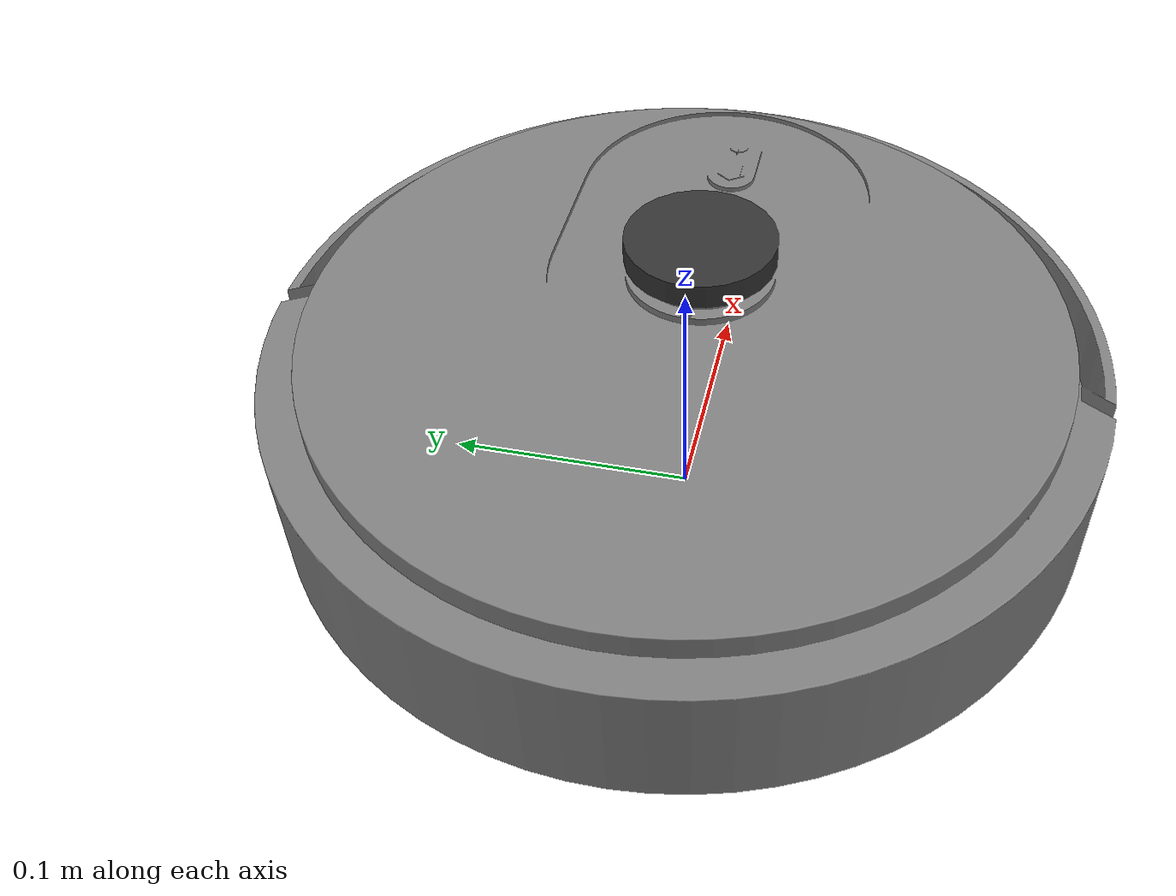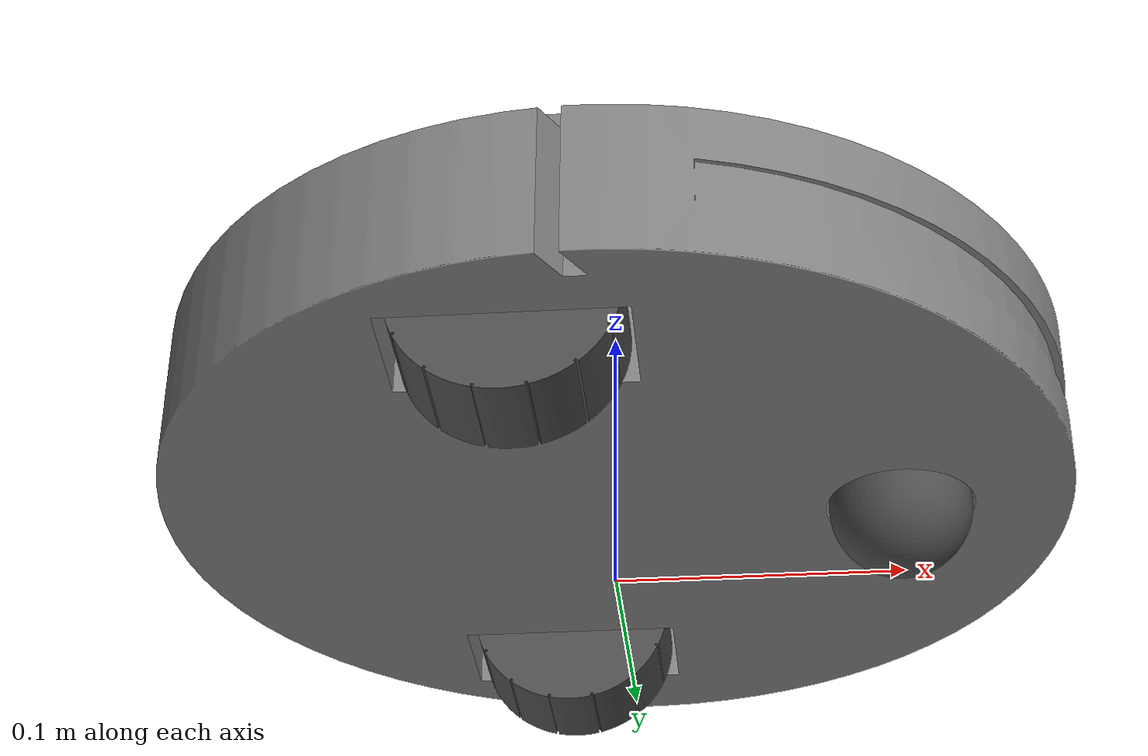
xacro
<?xml version="1.0" ?>
<!-- Generated using onshape-to-robot -->
<!-- Onshape document_id: 6ec665232e6fc828980877e8 -->
<robot name="robot_vacuum" xmlns:xacro="http://www.ros.org/wiki/xacro">

    <xacro:include filename="xacro_properties/xacro_properties.xacro" />
    <xacro:include filename="models/base_and_wheels.xacro" />
    <xacro:include filename="models/camera.xacro" />
    <xacro:include filename="models/lidar.xacro" />
    <xacro:include filename="gazebo/gazebo_plugins.xacro" />
    <xacro:include filename="gazebo/gazebo_properties.xacro" />

</robot>

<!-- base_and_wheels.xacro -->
<!-- Generated using onshape-to-robot -->
<!-- Onshape document_id: 6ec665232e6fc828980877e8 -->
<robot name="robot_vacuum" xmlns:xacro="http://www.ros.org/wiki/xacro">

  <link name="base_footprint_link"/>

  <joint name="base_joint" type="fixed">
    <parent link="base_footprint_link" />
    <child link="base_link" />
    <origin xyz="0 0 0.025" rpy="0 0 0" />
  </joint>

  <!-- Link base_link -->
  <link name="base_link">
    <inertial>
      <origin xyz="-0.00378578 0 0.0270897" rpy="0 0 0"/>
      <mass value="4.00461"/>
      <inertia ixx="0.0244265" ixy="-0" ixz="0.000164923" iyy="0.0275036" iyz="-0" izz="0.0499105"/>
    </inertial>
    <!-- Part base_link -->
    <visual>
      <origin xyz="0 0 0" rpy="-0 -0 -1.5708"/>
      <geometry>
        <mesh filename="package://robot_description/assets/base_link.stl"/>
      </geometry>
      <material name="base_link_material">
        <color rgba="0.501961 0.501961 0.501961 1"/>
      </material>
    </visual>
    <collision>
      <origin xyz="0 0 0" rpy="-0 -0 -1.5708"/>
      <geometry>
        <mesh filename="package://robot_description/assets/base_link.stl"/>
      </geometry>
    </collision>
  </link>

  <!-- Link roof -->
  <link name="roof_link">
    <inertial>
      <origin xyz="-2e-12 -0.00178866 -0.00507735" rpy="0 0 0"/>
      <mass value="0.683273"/>
      <inertia ixx="0.00350653" ixy="0" ixz="-0" iyy="0.00362483" iyz="-1.91394e-06" izz="0.00711728"/>
    </inertial>
    <!-- Part roof -->
    <visual>
      <origin xyz="0 0 0" rpy="-3.14159 -0 0"/>
      <geometry>
        <mesh filename="package://robot_description/assets/roof.stl"/>
      </geometry>
      <material name="roof_material">
        <color rgba="0.501961 0.501961 0.501961 1"/>
      </material>
    </visual>
    <collision>
      <origin xyz="0 0 0" rpy="-3.14159 -0 0"/>
      <geometry>
        <mesh filename="package://robot_description/assets/roof.stl"/>
      </geometry>
    </collision>
  </link>

   <!-- Joint from base_link to roof -->
  <joint name="roof_joint" type="fixed">
    <origin xyz="-0 -0 0.0545" rpy="-3.14159 0 1.5708"/>
    <parent link="base_link"/>
    <child link="roof_link"/>
  </joint>

  <!-- Link wheel_right -->
  <link name="right_wheel_link">
    <inertial>
      <origin xyz="-0 -0 -0.0175" rpy="0 0 0"/>
      <mass value="0.161369"/>
      <inertia ixx="7.32673e-05" ixy="0" ixz="-0" iyy="7.32673e-05" iyz="-0" izz="0.000113589"/>
    </inertial>
    <!-- Part wheel_right -->
    <visual>
      <origin xyz="0 -0 0" rpy="1.5708 -0 0"/>
      <geometry>
        <mesh filename="package://robot_description/assets/wheel.stl"/>
      </geometry>
      <material name="wheel_material">
        <color rgba="0.301961 0.301961 0.301961 1"/>
      </material>
    </visual>
    <collision>
      <origin xyz="0 -0 0" rpy="1.5708 -0 0"/>
      <geometry>
        <mesh filename="package://robot_description/assets/wheel.stl"/>
      </geometry>
    </collision>
  </link>

  <!-- Joint from base_link to wheel_right -->
  <joint name="right_wheel_joint" type="continuous">
    <origin xyz="-0.025 -0.093 0.0115" rpy="-1.5708 0 -0"/>
    <parent link="base_link"/>
    <child link="right_wheel_link"/>
    <axis xyz="0 0 1"/>
    <limit effort="5.0" velocity="5.0"/>
    <dynamics damping="0.1" friction="0.1"/>
  </joint>

  <!-- Link wheel_left -->
  <link name="left_wheel_link">
    <inertial>
      <origin xyz="-0 -0 0.0175" rpy="0 0 0"/>
      <mass value="0.161369"/>
      <inertia ixx="7.32673e-05" ixy="-0" ixz="-0" iyy="7.32673e-05" iyz="0" izz="0.000113589"/>
    </inertial>
    <!-- Part wheel_left -->
    <visual>
      <origin xyz="0 0 0.035" rpy="1.5708 -0 -0"/>
      <geometry>
        <mesh filename="package://robot_description/assets/wheel.stl"/>
      </geometry>
      <material name="wheel_2_material">
        <color rgba="0.301961 0.301961 0.301961 1"/>
      </material>
    </visual>
    <collision>
      <origin xyz="0 0 0.035" rpy="1.5708 -0 -0"/>
      <geometry>
        <mesh filename="package://robot_description/assets/wheel.stl"/>
      </geometry>
    </collision>
  </link>

  <!-- Joint from base_link to wheel_left -->
  <joint name="left_wheel_joint" type="continuous">
    <origin xyz="-0.025 0.093 0.0115" rpy="-1.5708 0 -0"/>
    <parent link="base_link"/>
    <child link="left_wheel_link"/>
    <axis xyz="0 0 1"/>
    <limit effort="5.0" velocity="5.0"/>
    <dynamics damping="0.1" friction="0.1"/>
  </joint>

  <!-- Link caster_wheel -->
  <link name="caster_wheel_link">
    <inertial>
      <origin xyz="0 -0 -0" rpy="0 0 0"/>
      <mass value="0.0688532"/>
      <inertia ixx="1.72133e-05" ixy="-0" ixz="-0" iyy="1.72133e-05" iyz="-0" izz="1.72133e-05"/>
    </inertial>
    <!-- Part caster_wheel -->
    <visual>
      <origin xyz="0 -0 0" rpy="-0 -0 -0"/>
      <geometry>
        <mesh filename="package://robot_description/assets/caster_wheel.stl"/>
      </geometry>
      <material name="caster_wheel_material">
        <color rgba="0.301961 0.301961 0.301961 1"/>
      </material>
    </visual>
    <collision>
      <origin xyz="0 -0 0" rpy="-0 -0 -0"/>
      <geometry>
        <mesh filename="package://robot_description/assets/caster_wheel.stl"/>
      </geometry>
    </collision>
  </link>

  <!-- Joint from base_link to caster_wheel -->
  <joint name="caster_wheel_joint" type="fixed">
    <origin xyz="0.1 -0 -0" rpy="-0 0 -0"/>
    <parent link="base_link"/>
    <child link="caster_wheel_link"/>
  </joint>

</robot>

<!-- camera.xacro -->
<!-- Generated using onshape-to-robot -->
<!-- Onshape document_id: 6ec665232e6fc828980877e8 -->
<robot xmlns:xacro="http://www.ros.org/wiki/xacro">

    <!-- Link camera -->
  <link name="camera_link">
    <inertial>
      <origin xyz="-0 0 -0.00025" rpy="0 0 0"/>
      <mass value="2.63e-05"/>
      <inertia ixx="1e-09" ixy="0" ixz="0" iyy="1e-09" iyz="0" izz="1e-09"/>
    </inertial>
    <!-- Part camera -->
    <visual>
      <origin xyz="0 0 -0.0003" rpy="0 0 0"/>
      <geometry>
        <box size="0.00025 0.01 0.004" />
      </geometry>
      <material name="camera_link_material">
        <color rgba="0 0 0 1"/>
      </material>
    </visual>
    <collision>
      <origin xyz="0 0 -0.0005" rpy="0 0 0"/>
      <geometry>
        <box size="0.01 0.005 0.002" />
      </geometry>
    </collision>
  </link>

  <!-- Joint from base_link to camera -->
  <joint name="camera_joint" type="fixed">
    <origin xyz="0.159958 -0 0.0275" rpy="0 0 0"/>
    <parent link="base_link"/>
    <child link="camera_link"/>
    <axis xyz="0 0 1"/>
    <limit effort="100" velocity="100"/>
  </joint>

  <link name="camera_optical_link"></link>

  <joint name="camera_optical_joint" type="fixed">
    <origin xyz="0 0 0" rpy="-1.5708 0 -1.5708"/>
    <parent link="camera_link"/>
    <child link="camera_optical_link"/>
  </joint>

</robot>

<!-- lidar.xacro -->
<!-- Generated using onshape-to-robot -->
<!-- Onshape document_id: 6ec665232e6fc828980877e8 -->
<robot xmlns:xacro="http://www.ros.org/wiki/xacro">

    <!-- Link lidar -->
  <link name="lidar_link">
    <inertial>
      <origin xyz="-0 0 -0.005" rpy="0 0 0"/>
      <mass value="0.0258852"/>
      <inertia ixx="5.80638e-06" ixy="0" ixz="0" iyy="5.80638e-06" iyz="-0" izz="1.12633e-05"/>
    </inertial>
    <!-- Part lidar -->
    <visual>
      <origin xyz="0 0 0" rpy="0 0 0"/>
      <geometry>
        <cylinder radius="0.03" length="0.01" />
      </geometry>
      <material name="lidar_link_material">
        <color rgba="0.2 0.2 0.2 1"/>
      </material>
    </visual>
    <collision>
      <origin xyz="-0 0 0" rpy="0 0 0"/>
      <geometry>
        <cylinder radius="0.03" length="0.015" />
      </geometry>
    </collision>
  </link>

  <!-- Joint from roof to lidar -->
  <joint name="lidar_joint" type="fixed">
    <origin xyz="0 0.029 -0.022" rpy="0 3.14 4.71"/>
    <parent link="roof_link"/>
    <child link="lidar_link"/>
    <axis xyz="0 0 1"/>
    <limit effort="100" velocity="100"/>
  </joint>

</robot>
